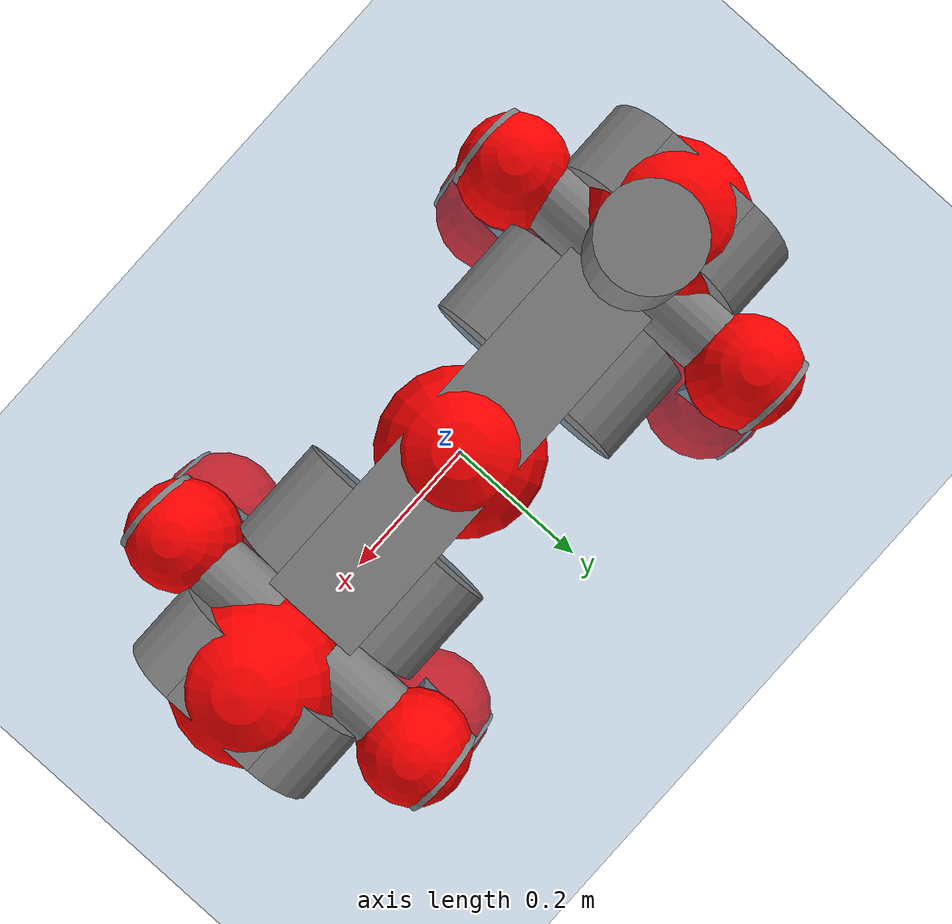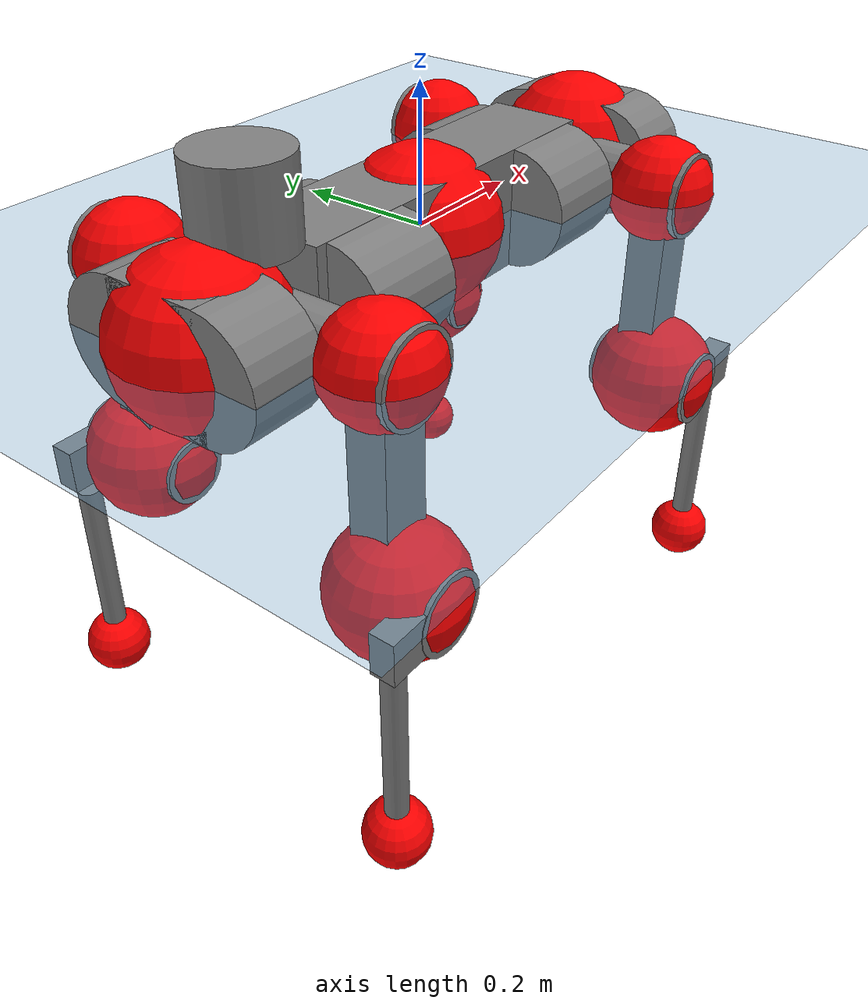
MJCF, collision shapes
<mujoco model="anymal_c">
  <compiler angle="radian" assetdir="assets" balanceinertia="true" inertiafromgeom="false"/>

  <option timestep="0.005" density="1.2" viscosity="2e-05"/>

  <size nkey="1"/>

  <visual>
    <quality shadowsize="8192"/>
    <map shadowclip="0.5"/>
  </visual>

  <default>
    <default class="/">
      <material specular="0" shininess="0.25"/>
      <geom contype="0" conaffinity="0" group="1" solref="-1000 -80"/>
      <site size="0.01 0.005 0.005" group="5"/>
      <general forcelimited="true" forcerange="-80 80" biastype="affine" gainprm="80" biasprm="0 -80 -2"/>
      <default class="anymal_c">
        <joint armature="0.01" damping="0.01" frictionloss="0.1"/>
        <default class="visual">
          <geom type="mesh" group="2"/>
          <default class="visual_zflip"/>
        </default>
        <default class="collision">
          <geom type="cylinder" group="3"/>
          <default class="foot">
            <geom size="0.03 0 0" type="sphere" condim="6" priority="1" friction="0.8 0.02 0.01" solimp="0.015 1 0.03"/>
          </default>
        </default>
      </default>
      <default class="reward_collision_sphere">
        <geom group="5" rgba="1 0 0 1"/>
      </default>
    </default>
  </default>

  <asset>
    <texture type="skybox" colorspace="auto" name="//unnamed_texture_0" builtin="gradient" rgb1="0.95 0.95 0.95" rgb2="0.95 0.95 0.95" width="100" height="600"/>
    <texture type="2d" colorspace="auto" name="texplane" builtin="checker" rgb1="0.345 0.575 0.748" rgb2="0.345 0.575 0.748" markrgb="1 1 1" width="512" height="512"/>
    <texture type="2d" colorspace="linear" name="base" file="base.png"/>
    <texture type="2d" colorspace="linear" name="top_shell" file="top_shell.png"/>
    <texture type="2d" colorspace="linear" name="bottom_shell" file="bottom_shell.png"/>
    <texture type="2d" colorspace="linear" name="remote" file="remote.png"/>
    <texture type="2d" colorspace="linear" name="hatch" file="hatch.png"/>
    <texture type="2d" colorspace="linear" name="handle" file="handle.png"/>
    <texture type="2d" colorspace="linear" name="face" file="face.png"/>
    <texture type="2d" colorspace="linear" name="battery" file="battery.png"/>
    <texture type="2d" colorspace="linear" name="lidar_cage" file="lidar_cage.png"/>
    <texture type="2d" colorspace="linear" name="depth_camera" file="depth_camera.png"/>
    <texture type="2d" colorspace="linear" name="wide_angle_camera" file="wide_angle_camera.png"/>
    <texture type="2d" colorspace="linear" name="lidar" file="lidar.png"/>
    <texture type="2d" colorspace="linear" name="drive" file="drive.png"/>
    <texture type="2d" colorspace="linear" name="hip_l" file="hip_l.png"/>
    <texture type="2d" colorspace="linear" name="shank_l" file="shank_l.png"/>
    <texture type="2d" colorspace="linear" name="foot" file="foot.png"/>
    <texture type="2d" colorspace="linear" name="thigh" file="thigh.png"/>
    <texture type="2d" colorspace="linear" name="shank_r" file="shank_r.png"/>
    <texture type="2d" colorspace="linear" name="hip_r" file="hip_r.png"/>
    <material name="MatPlane" class="/" texture="texplane" texuniform="true" texrepeat="2 2" specular="0.9" shininess="0.5"/>
    <material name="black_plastic" class="/" rgba="0.007 0.007 0.007 1"/>
    <material name="green" class="/" rgba="0.052 0.178 0.033 1"/>
    <material name="red" class="/" rgba="0.178 0.006 0.005 1"/>
    <material name="yellow" class="/" rgba="0.178 0.119 0.006 1"/>
    <material name="lwl" class="/" rgba="0.8 0.8 0.8 1"/>
    <material name="base" class="/" texture="base"/>
    <material name="top_shell" class="/" texture="top_shell"/>
    <material name="bottom_shell" class="/" texture="bottom_shell"/>
    <material name="hip_l" class="/" texture="hip_l"/>
    <material name="thigh" class="/" texture="thigh"/>
    <material name="shank_l" class="/" texture="shank_l"/>
    <material name="foot" class="/" texture="foot"/>
    <material name="hip_r" class="/" texture="hip_r"/>
    <material name="shank" class="/" texture="shank_r"/>
    <material name="hatch" class="/" texture="hatch"/>
    <material name="remote" class="/" texture="remote"/>
    <material name="handle" class="/" texture="handle"/>
    <material name="face" class="/" texture="face"/>
    <material name="depth_camera" class="/" texture="depth_camera"/>
    <material name="wide_angle_camera" class="/" texture="wide_angle_camera"/>
    <material name="battery" class="/" texture="battery"/>
    <material name="lidar_cage" class="/" texture="lidar_cage"/>
    <material name="lidar" class="/" texture="lidar"/>
    <material name="drive" class="/" texture="drive"/>
    <mesh name="base_0" class="/" file="base_0.obj"/>
    <mesh name="base_1" class="/" file="base_1.obj"/>
    <mesh name="base_2" class="/" file="base_2.obj"/>
    <mesh name="base_3" class="/" file="base_3.obj"/>
    <mesh name="base_4" class="/" file="base_4.obj"/>
    <mesh name="base_5" class="/" file="base_5.obj"/>
    <mesh name="top_shell" class="/" file="top_shell.obj"/>
    <mesh name="bottom_shell" class="/" file="bottom_shell.obj"/>
    <mesh name="remote" class="/" file="remote.obj"/>
    <mesh name="handle" class="/" file="handle.obj"/>
    <mesh name="face" class="/" file="face.obj"/>
    <mesh name="wide_angle_camera" class="/" file="wide_angle_camera.obj"/>
    <mesh name="depth_camera" class="/" file="depth_camera.obj"/>
    <mesh name="battery" class="/" file="battery.obj"/>
    <mesh name="lidar_cage" class="/" file="lidar_cage.obj"/>
    <mesh name="lidar" class="/" file="lidar.obj"/>
    <mesh name="drive" class="/" file="drive.obj"/>
    <mesh name="hip_l" class="/" file="hip_l.obj"/>
    <mesh name="thigh" class="/" file="thigh.obj"/>
    <mesh name="shank_l" class="/" file="shank_l.obj"/>
    <mesh name="foot" class="/" file="foot.obj"/>
    <mesh name="hip_r" class="/" file="hip_r.obj"/>
    <mesh name="hatch" class="/" file="hatch.obj"/>
    <mesh name="shank_r" class="/" file="shank_r.obj"/>
  </asset>

  <worldbody>
    <geom name="floor" class="/" size="100 100 0.125" type="plane" group="0" material="MatPlane"/>
    <light name="toplight_shadow" class="/" pos="0 0 5" dir="0.0990148 0.0990148 -0.990148" type="directional" ambient="0.04 0.04 0.04" diffuse="0.55 0.55 0.55" specular="0.12 0.12 0.12"/>
    <light name="toplight_fill" class="/" pos="0 0 5" dir="0.0990148 0.0990148 -0.990148" type="directional" castshadow="false" ambient="0.04 0.04 0.04" diffuse="0.3 0.3 0.3" specular="0.08 0.08 0.08"/>
    <body name="trunk" childclass="anymal_c" pos="-0.000609431 -0.000299692 -0.000436161" quat="1 -0.000519466 0.000335157 0.000461794">
      <inertial pos="0.0119908 0.00671503 0.0560056" quat="0.502792 0.502193 0.497618 0.497371" mass="15.9881" diaginertia="0.372651 0.431554 0.344036"/>
      <joint name="//unnamed_joint_0" type="free" armature="0" damping="0" frictionloss="0"/>
      <geom name="//unnamed_geom_1" class="visual" material="green" mesh="base_0"/>
      <geom name="//unnamed_geom_2" class="visual" material="yellow" mesh="base_1"/>
      <geom name="//unnamed_geom_3" class="visual" material="red" mesh="base_2"/>
      <geom name="//unnamed_geom_4" class="visual" material="black_plastic" mesh="base_3"/>
      <geom name="//unnamed_geom_5" class="visual" material="lwl" mesh="base_4"/>
      <geom name="//unnamed_geom_6" class="visual" material="base" mesh="base_5"/>
      <geom name="trunk_1" class="collision" size="0.281691 0.0679943 0.0874213" type="box"/>
      <geom name="trunk_2" class="collision" size="0.0874213 0.0704227" pos="0.194662 0.0650736 0" quat="0.707107 0 0.707107 0"/>
      <geom name="trunk_3" class="collision" size="0.0874213 0.0704227" pos="-0.194662 0.0650736 0" quat="0.707107 0 0.707107 0"/>
      <geom name="trunk_4" class="collision" size="0.0874213 0.0704227" pos="0.194662 -0.0650736 0" quat="0.707107 0 0.707107 0"/>
      <geom name="trunk_5" class="collision" size="0.0874213 0.0704227" pos="-0.194662 -0.0650736 0" quat="0.707107 0 0.707107 0"/>
      <geom name="//unnamed_geom_12" class="visual" material="top_shell" mesh="top_shell"/>
      <geom name="//unnamed_geom_13" class="visual" material="bottom_shell" mesh="bottom_shell"/>
      <geom name="//unnamed_geom_14" class="visual" material="remote" mesh="remote"/>
      <geom name="//unnamed_geom_15" class="visual" material="handle" mesh="handle"/>
      <geom name="//unnamed_geom_16" class="visual" pos="0.370976 0 0" quat="1 0 0 0" material="face" mesh="face"/>
      <geom name="trunk_6" class="collision" size="0.0534241 0.0679943 0.0874213" pos="0.4202 0 0" type="box"/>
      <geom name="//unnamed_geom_18" class="collision" size="0.0874213 0.0534241" pos="0.4202 0.0650736 0" quat="0.707107 0 0.707107 0"/>
      <geom name="//unnamed_geom_19" class="collision" size="0.0874213 0.0534241" pos="0.4202 -0.0650736 0" quat="0.707107 0 0.707107 0"/>
      <geom name="//unnamed_geom_20" class="visual" pos="0.413183 0 -0.0332889" quat="0.965926 0 0.258819 0" material="depth_camera" mesh="depth_camera"/>
      <geom name="//unnamed_geom_21" class="visual" pos="0.459133 0 0.0163087" material="wide_angle_camera" mesh="wide_angle_camera"/>
      <geom name="//unnamed_geom_22" class="visual_zflip" pos="-0.370976 0 0" quat="0 0 0 1" material="face" mesh="face"/>
      <geom name="trunk_7" class="collision" size="0.0534241 0.0679943 0.0874213" pos="-0.4202 0 0" quat="0 0 0 1" type="box"/>
      <geom name="//unnamed_geom_24" class="collision" size="0.0874213 0.0534241" pos="-0.4202 -0.0650736 0" quat="0 -0.707107 0 0.707107"/>
      <geom name="//unnamed_geom_25" class="collision" size="0.0874213 0.0534241" pos="-0.4202 0.0650736 0" quat="0 -0.707107 0 0.707107"/>
      <geom name="//unnamed_geom_26" class="visual" pos="-0.413183 0 -0.0332889" quat="0 -0.258819 0 0.965926" material="depth_camera" mesh="depth_camera"/>
      <geom name="//unnamed_geom_27" class="visual_zflip" pos="-0.459133 0 0.0163087" quat="0 0 0 1" material="wide_angle_camera" mesh="wide_angle_camera"/>
      <geom name="//unnamed_geom_28" class="visual" material="battery" mesh="battery"/>
      <geom name="//unnamed_geom_29" class="visual" pos="0 0.0715414 0.0301701" quat="0.683013 -0.183013 0.183013 0.683013" material="depth_camera" mesh="depth_camera"/>
      <geom name="//unnamed_geom_30" class="visual" pos="0 -0.0715414 0.0301701" quat="0.683013 0.183013 0.183013 -0.683013" material="depth_camera" mesh="depth_camera"/>
      <geom name="//unnamed_geom_31" class="visual" pos="-0.325778 0 0.0800727" quat="1 0 0 0" material="lidar_cage" mesh="lidar_cage"/>
      <geom name="trunk_8" class="collision" size="0.0679943 0.0582809" pos="-0.325778 0 0.145438"/>
      <geom name="//unnamed_geom_33" class="visual" pos="-0.325778 1.36042e-05 0.154916" quat="0.707107 0 0 -0.707107" material="lidar" mesh="lidar"/>
      <geom name="//unnamed_geom_34" class="visual" pos="0.268409 0.0967376 -2.7566e-09" quat="0.258819 0.965926 0 0" material="drive" mesh="drive"/>
      <geom name="//unnamed_geom_35" class="visual" pos="0.268409 -0.0967376 2.7566e-09" quat="0.258819 -0.965926 0 0" material="drive" mesh="drive"/>
      <geom name="//unnamed_geom_36" class="visual" pos="-0.268409 0.0967376 2.7566e-09" quat="0 0 0.965926 -0.258819" material="drive" mesh="drive"/>
      <geom name="//unnamed_geom_37" class="visual" pos="-0.268409 -0.0967376 -2.7566e-09" quat="0 0 -0.965926 -0.258819" material="drive" mesh="drive"/>
      <geom name="//unnamed_geom_38" class="visual" pos="0.103819 0 0.079528" quat="1 0 0 0" material="hatch" mesh="hatch"/>
      <geom name="//unnamed_geom_39" class="reward_collision_sphere" size="0.116562"/>
      <geom name="//unnamed_geom_40" class="reward_collision_sphere" size="0.116562" pos="0.402748 0 0"/>
      <geom name="//unnamed_geom_41" class="reward_collision_sphere" size="0.116562" pos="-0.402748 0 0"/>
      <site name="imu" pos="0.183465 0.00926693 0.0893553" size="0.00971348"/>
      <camera name="track" pos="0 -1.85925 0" quat="0.707107 0.707107 0 0" mode="trackcom"/>
      <camera name="ego_camera" pos="0.402748 0 -0.043577" quat="-0.5 -0.5 0.5 0.5"/>
      <body name="LF_HIP" pos="0.273678 0.102347 0.00196865" quat="0.259506 0.965741 -0.000151451 0.000733419">
        <inertial pos="0.051364 -0.00906227 -0.0109941" quat="-0.129809 0.707872 -0.134734 0.681112" mass="2.77804" diaginertia="0.00382694 0.00411092 0.00562936"/>
        <joint name="LF_HAA" pos="0 0 0" axis="0.999901 0.0139708 0.00186348" stiffness="0.0192875" range="-0.708454 0.465039" armature="0.0106173" damping="0" frictionloss="0.116595"/>
        <geom name="//unnamed_geom_42" class="visual" pos="0 -0.000162158 2.66344e-05" quat="0.258819 -0.965926 0 0" material="hip_l" mesh="hip_l"/>
        <geom name="//unnamed_geom_43" class="visual" pos="0.0536102 -0.0654729 -0.0389828" quat="0.183013 -0.683013 0.683013 0.183013" material="drive" mesh="drive"/>
        <geom name="//unnamed_geom_44" class="collision" size="0.0485674 0.0679943" pos="0.0536102 -0.0111181 -0.00752248" quat="-0.353553 -0.612372 0.612372 -0.353553"/>
        <body name="LF_THIGH" pos="0.0564202 -0.0759974 -0.0474575" quat="0.184882 -0.681529 0.683266 0.185699">
          <inertial pos="0.0298488 -2.30657e-05 -0.270268" quat="0.993785 0.0171791 -0.0849626 0.0698414" mass="2.89357" diaginertia="0.0170605 0.0225184 0.00626435"/>
          <joint name="LF_HFE" pos="0 0 0" axis="0.999999 0.000653106 -0.000972292" stiffness="0.00931046" range="-3.27658 3.06184" armature="0.00948669" damping="0" frictionloss="0.111001"/>
          <geom name="//unnamed_geom_45" class="visual" pos="-0.000688951 -1.08562e-06 0" quat="0.707107 0 0 -0.707107" material="thigh" mesh="thigh"/>
          <geom name="//unnamed_geom_46" class="collision" size="0.0631376 0.0388539" pos="0.0357998 0 0" quat="0.5 0.5 -0.5 -0.5"/>
          <geom name="//unnamed_geom_47" class="collision" size="0.0364255 0.0291404 0.137265" pos="0.0268499 0 -0.153951" quat="0.707107 0 0 -0.707107" type="box"/>
          <geom name="//unnamed_geom_48" class="visual" pos="0.0897681 0 -0.310486" quat="1 0 0 0" material="drive" mesh="drive"/>
          <geom name="//unnamed_geom_49" class="collision" size="0.0485674 0.0679943" pos="0.0271184 0 -0.310486" quat="0.707107 0 0.707107 0"/>
          <geom name="//unnamed_geom_50" class="reward_collision_sphere" size="0.0777078" pos="0.0223749 0 0"/>
          <body name="LF_SHANK" pos="0.0897446 -0.00715671 -0.314036" quat="1 0.000113828 -0.000321386 0.000352863">
            <inertial pos="0.00440203 -0.0557077 -0.0860018" quat="0.992851 -0.117616 -0.00428206 -0.0198861" mass="0.532428" diaginertia="0.00616816 0.00645365 0.00171007"/>
            <joint name="LF_KFE" pos="0 0 0" axis="0.999911 0.0128796 0.00335252" stiffness="0.0324729" range="-3.21675 3.15718" armature="0.00959004" damping="0.0212879" frictionloss="0.102701"/>
            <geom name="//unnamed_geom_51" class="visual" pos="-0.000224652 -0.00119785 0" quat="0.707107 0 0 -0.707107" material="shank_l" mesh="shank_l"/>
            <geom name="LF_kfe_act" class="collision" size="0.0582809 0.019427" pos="0.0178999 0 0" quat="0.5 0.5 -0.5 -0.5"/>
            <geom name="//unnamed_geom_53" class="collision" size="0.0558515 0.032783 0.0184556" pos="0.0178999 -0.0534524 0" quat="0.5 0.5 -0.5 -0.5" type="box"/>
            <geom name="//unnamed_geom_54" class="visual" pos="0.0116797 -0.0821464 -0.368193" quat="0.382683 0 0 -0.92388" material="foot" mesh="foot"/>
            <geom name="LF_calf" class="collision" size="0.0169986 0.137205" pos="0.0116797 -0.0817603 -0.184096" quat="0.707107 0 0 -0.707107"/>
            <geom name="LF_foot" class="foot" size="0.0319806" pos="0.0116797 -0.0817603 -0.343681" quat="0.707107 0 0 -0.707107"/>
            <geom name="//unnamed_geom_57" class="reward_collision_sphere" size="0.0971348" pos="-0.0447498 0 0"/>
            <geom name="//unnamed_geom_58" class="reward_collision_sphere" size="0.0485674" pos="0.0116797 -0.0817603 -0.343681"/>
            <site name="LF_foot" class="foot" pos="0.0116797 -0.0817603 -0.343681" quat="0.707107 0 0 -0.707107" size="0.00971348"/>
          </body>
        </body>
      </body>
      <body name="RF_HIP" pos="0.276593 -0.0960263 -0.00119558" quat="0.258817 -0.965926 -0.000165398 0.000258608">
        <inertial pos="0.0543728 0.0242285 -0.00517591" quat="0.127352 0.708862 0.106704 0.6855" mass="2.53184" diaginertia="0.00367156 0.00314852 0.00547407"/>
        <joint name="RF_HAA" pos="0 0 0" axis="0.999592 -0.0282672 -0.0041685" stiffness="0.000186684" range="-0.460681 0.729054" armature="0.00948451" damping="0.0312599" frictionloss="0.0938303"/>
        <geom name="//unnamed_geom_59" class="visual" pos="0 0.000162157 2.66343e-05" quat="0.258819 0.965926 0 0" material="hip_r" mesh="hip_r"/>
        <geom name="//unnamed_geom_60" class="visual" pos="0.0536102 0.0654729 -0.0389828" quat="0.183013 0.683013 0.683013 -0.183013" material="drive" mesh="drive"/>
        <geom name="//unnamed_geom_61" class="collision" size="0.0485674 0.0679943" pos="0.0536102 0.0111181 -0.00752248" quat="-0.353553 0.612372 0.612372 0.353553"/>
        <body name="RF_THIGH" pos="0.0511423 0.0697683 -0.0393289" quat="0.182454 0.680845 0.685197 -0.18348">
          <inertial pos="0.0196539 -8.58761e-05 -0.264809" quat="0.990866 -0.00428978 -0.0875654 0.102464" mass="2.57715" diaginertia="0.0178425 0.0219683 0.00568876"/>
          <joint name="RF_HFE" pos="0 0 0" axis="0.999958 -0.00918553 8.39022e-06" stiffness="0.0170678" range="-3.14946 3.11566" armature="0.0113651" damping="0.00984471" frictionloss="0.091163"/>
          <geom name="//unnamed_geom_62" class="visual" pos="-0.000688951 -1.08562e-06 0" quat="0.707107 0 0 -0.707107" material="thigh" mesh="thigh"/>
          <geom name="//unnamed_geom_63" class="collision" size="0.0631376 0.0388539" pos="0.0357998 0 0" quat="0.5 0.5 0.5 0.5"/>
          <geom name="//unnamed_geom_64" class="collision" size="0.0364255 0.0291404 0.137265" pos="0.0268499 0 -0.153951" quat="0.707107 0 0 0.707107" type="box"/>
          <geom name="//unnamed_geom_65" class="visual" pos="0.0897681 0 -0.310486" quat="1 0 0 0" material="drive" mesh="drive"/>
          <geom name="//unnamed_geom_66" class="collision" size="0.0485674 0.0679943" pos="0.0271184 0 -0.310486" quat="0.707107 0 0.707107 0"/>
          <geom name="//unnamed_geom_67" class="reward_collision_sphere" size="0.0777078" pos="0.0223749 0 0"/>
          <body name="RF_SHANK" pos="0.092719 0.000575186 -0.309415" quat="0.999999 0.000345034 0.00127371 0.000575582">
            <inertial pos="0.0101671 0.0570859 -0.0878326" quat="0.987008 0.154076 -0.0091816 0.0446244" mass="0.483295" diaginertia="0.00536014 0.00609945 0.00160578"/>
            <joint name="RF_KFE" pos="0 0 0" axis="1 9.16605e-06 1.36737e-05" stiffness="0.0386103" range="-2.97744 3.20404" armature="0.00668941" damping="0" frictionloss="0.0894268"/>
            <geom name="//unnamed_geom_68" class="visual" pos="-0.000224651 0.00119785 0" quat="0.707107 0 0 0.707107" material="shank" mesh="shank_r"/>
            <geom name="RF_kfe_act" class="collision" size="0.0582809 0.019427" pos="0.0178999 0 0" quat="0.5 0.5 0.5 0.5"/>
            <geom name="//unnamed_geom_70" class="collision" size="0.0558515 0.032783 0.0184556" pos="0.0178999 0.0534524 0" quat="0.5 0.5 0.5 0.5" type="box"/>
            <geom name="//unnamed_geom_71" class="visual" pos="0.0116796 0.0821464 -0.368193" quat="0.382683 0 0 0.92388" material="foot" mesh="foot"/>
            <geom name="RF_calf" class="collision" size="0.0169986 0.137205" pos="0.0116797 0.0817603 -0.184096" quat="0.707107 0 0 0.707107"/>
            <geom name="RF_foot" class="foot" size="0.0346829" pos="0.0116797 0.0817603 -0.343681" quat="0.707107 0 0 0.707107"/>
            <geom name="//unnamed_geom_74" class="reward_collision_sphere" size="0.0971348" pos="-0.0447498 0 0"/>
            <geom name="//unnamed_geom_75" class="reward_collision_sphere" size="0.0485674" pos="0.0116797 0.0817603 -0.343681"/>
            <site name="RF_foot" class="foot" pos="0.0116797 0.0817603 -0.343681" quat="0.707107 0 0 0.707107" size="0.00971348"/>
          </body>
        </body>
      </body>
      <body name="LH_HIP" pos="-0.27536 0.101196 0.00651986" quat="0.000323979 0.000159758 0.966075 -0.258262">
        <inertial pos="0.0513454 0.00996125 -0.000489836" quat="0.111131 0.684765 0.140989 0.706306" mass="2.29874" diaginertia="0.00264023 0.00302572 0.0046748"/>
        <joint name="LH_HAA" pos="0 0 0" axis="0.999598 -0.00203863 0.0282933" stiffness="0.00582101" range="-0.520828 0.711171" armature="0.00842439" damping="0.0426339" frictionloss="0.0992264"/>
        <geom name="//unnamed_geom_76" class="visual" pos="0 0.000162157 2.66343e-05" quat="-0.258819 -0.965926 0 0" material="hip_r" mesh="hip_r"/>
        <geom name="//unnamed_geom_77" class="visual" pos="0.0536102 0.0654729 -0.0389828" quat="0.183013 0.683013 0.683013 -0.183013" material="drive" mesh="drive"/>
        <geom name="//unnamed_geom_78" class="collision" size="0.0485674 0.0679943" pos="0.0536102 0.0111181 -0.00752248" quat="-0.353553 0.612372 0.612372 0.353553"/>
        <body name="LH_THIGH" pos="0.0517537 0.0690648 -0.0472814" quat="0.182848 0.683088 0.682892 -0.183349">
          <inertial pos="0.0373171 -0.00031374 -0.25909" quat="0.992691 -0.000758738 -0.0817824 0.0887501" mass="3.01076" diaginertia="0.0204447 0.0206992 0.00671807"/>
          <joint name="LH_HFE" pos="0 0 0" axis="0.999973 0.00602027 0.00429562" range="-3.09569 3.218" armature="0.0103141" damping="0.0307892" frictionloss="0.0999284"/>
          <geom name="//unnamed_geom_79" class="visual" pos="-0.000688951 -1.08562e-06 0" quat="0.707107 0 0 -0.707107" material="thigh" mesh="thigh"/>
          <geom name="//unnamed_geom_80" class="collision" size="0.0631376 0.0388539" pos="0.0357998 0 0" quat="0.5 0.5 -0.5 -0.5"/>
          <geom name="//unnamed_geom_81" class="collision" size="0.0364255 0.0291404 0.137265" pos="0.0268499 0 -0.153951" quat="0.707107 0 0 -0.707107" type="box"/>
          <geom name="//unnamed_geom_82" class="visual" pos="0.0897681 0 -0.310486" quat="1 0 0 0" material="drive" mesh="drive"/>
          <geom name="//unnamed_geom_83" class="collision" size="0.0485674 0.0679943" pos="0.0271184 0 -0.310486" quat="0.707107 0 0.707107 0"/>
          <geom name="//unnamed_geom_84" class="reward_collision_sphere" size="0.0777078" pos="0.0223749 0 0"/>
          <body name="LH_SHANK" pos="0.091054 -0.000851757 -0.310585" quat="1 -6.47374e-06 9.13007e-05 -6.01075e-06">
            <inertial pos="0.00264718 0.0500056 -0.0876743" quat="0.992991 0.116546 0.012997 0.0147577" mass="0.476314" diaginertia="0.00537641 0.00515263 0.00150597"/>
            <joint name="LH_KFE" pos="0 0 0" axis="0.999931 -0.0021994 0.0115405" range="-3.27154 3.22559" armature="0.00596576" damping="0" frictionloss="0.126587"/>
            <geom name="//unnamed_geom_85" class="visual" pos="-0.000224651 0.00119785 0" quat="-0.707107 0 0 -0.707107" material="shank" mesh="shank_r"/>
            <geom name="LH_kfe_act" class="collision" size="0.0582809 0.019427" pos="0.0178999 0 0" quat="0.5 0.5 -0.5 -0.5"/>
            <geom name="//unnamed_geom_87" class="collision" size="0.0558515 0.032783 0.0184556" pos="0.0178999 0.0534524 0" quat="0.5 0.5 -0.5 -0.5" type="box"/>
            <geom name="//unnamed_geom_88" class="visual" pos="0.0116796 0.0821464 -0.368193" quat="-0.382683 0 0 -0.92388" material="foot" mesh="foot"/>
            <geom name="LH_calf" class="collision" size="0.0169986 0.137205" pos="0.0116797 0.0817603 -0.184096" quat="0.707107 0 0 -0.707107"/>
            <geom name="LH_foot" class="foot" size="0.0284504" pos="0.0116797 0.0817603 -0.343681" quat="0.707107 0 0 -0.707107"/>
            <geom name="//unnamed_geom_91" class="reward_collision_sphere" size="0.0971348" pos="-0.0447498 0 0"/>
            <geom name="//unnamed_geom_92" class="reward_collision_sphere" size="0.0485674" pos="0.0116797 0.0817603 -0.343681"/>
            <site name="LH_foot" class="foot" pos="0.0116797 0.0817603 -0.343681" quat="0.707107 0 0 -0.707107" size="0.00971348"/>
          </body>
        </body>
      </body>
      <body name="RH_HIP" pos="-0.278179 -0.0948815 -0.00105881" quat="-0.000382206 -0.000599055 -0.965913 -0.258864">
        <inertial pos="0.0538706 -0.0167898 -0.000612007" quat="-0.0811943 0.70148 -0.131248 0.695779" mass="2.63222" diaginertia="0.0037391 0.00387013 0.00568611"/>
        <joint name="RH_HAA" pos="0 0 0" axis="0.999278 0.0363703 0.0109509" stiffness="0.00518582" range="-0.577483 0.441187" armature="0.0102203" damping="0.0209754" frictionloss="0.099341"/>
        <geom name="//unnamed_geom_93" class="visual" pos="0 -0.000162158 2.66344e-05" quat="-0.258819 0.965926 0 0" material="hip_l" mesh="hip_l"/>
        <geom name="//unnamed_geom_94" class="visual" pos="0.0536102 -0.0654729 -0.0389828" quat="-0.183013 0.683013 -0.683013 -0.183013" material="drive" mesh="drive"/>
        <geom name="//unnamed_geom_95" class="collision" size="0.0485674 0.0679943" pos="0.0536102 -0.0111181 -0.00752248" quat="0.353553 0.612372 -0.612372 0.353553"/>
        <body name="RH_THIGH" pos="0.0449364 -0.068083 -0.0386151" quat="-0.185366 0.684001 -0.68169 -0.18188">
          <inertial pos="0.0297974 -0.0030439 -0.266798" quat="0.993269 -0.00419466 -0.0810344 0.082662" mass="3.1248" diaginertia="0.019308 0.021125 0.00655151"/>
          <joint name="RH_HFE" pos="0 0 0" axis="0.999958 -0.00141313 0.00904578" range="-3.20365 3.14126" armature="0.00899117" damping="0" frictionloss="0.0959698"/>
          <geom name="//unnamed_geom_96" class="visual" pos="-0.000688951 -1.08562e-06 0" quat="0.707107 0 0 -0.707107" material="thigh" mesh="thigh"/>
          <geom name="//unnamed_geom_97" class="collision" size="0.0631376 0.0388539" pos="0.0357998 0 0" quat="0.5 0.5 0.5 0.5"/>
          <geom name="//unnamed_geom_98" class="collision" size="0.0364255 0.0291404 0.137265" pos="0.0268499 0 -0.153951" quat="0.707107 0 0 0.707107" type="box"/>
          <geom name="//unnamed_geom_99" class="visual" pos="0.0897681 0 -0.310486" quat="1 0 0 0" material="drive" mesh="drive"/>
          <geom name="//unnamed_geom_100" class="collision" size="0.0485674 0.0679943" pos="0.0271184 0 -0.310486" quat="0.707107 0 0.707107 0"/>
          <geom name="//unnamed_geom_101" class="reward_collision_sphere" size="0.0777078" pos="0.0223749 0 0"/>
          <body name="RH_SHANK" pos="0.0904418 -0.00571611 -0.308336" quat="0.999992 0.000150872 -0.00167857 0.00353025">
            <inertial pos="-0.00095595 -0.0554062 -0.0874873" quat="0.992896 -0.108379 0.00990643 -0.0480973" mass="0.519521" diaginertia="0.00587163 0.00639812 0.0017531"/>
            <joint name="RH_KFE" pos="0 0 0" axis="0.999935 0.00673833 -0.00923657" stiffness="0.00270874" range="-3.11933 2.99268" armature="0.00948978" damping="0" frictionloss="0.089777"/>
            <geom name="//unnamed_geom_102" class="visual" pos="-0.000224652 -0.00119785 0" quat="0.707107 0 0 -0.707107" material="shank_l" mesh="shank_l"/>
            <geom name="RH_kfe_act" class="collision" size="0.0582809 0.019427" pos="0.0178999 0 0" quat="0.5 0.5 0.5 0.5"/>
            <geom name="//unnamed_geom_104" class="collision" size="0.0558515 0.032783 0.0184556" pos="0.0178999 -0.0534524 0" quat="0.5 0.5 0.5 0.5" type="box"/>
            <geom name="//unnamed_geom_105" class="visual" pos="0.0116797 -0.0821464 -0.368193" quat="0.382683 0 0 -0.92388" material="foot" mesh="foot"/>
            <geom name="RH_calf" class="collision" size="0.0169986 0.137205" pos="0.0116797 -0.0817603 -0.184096" quat="0.707107 0 0 0.707107"/>
            <geom name="RH_foot" class="foot" size="0.033377" pos="0.0116797 -0.0817603 -0.343681" quat="0.707107 0 0 0.707107"/>
            <geom name="//unnamed_geom_108" class="reward_collision_sphere" size="0.0971348" pos="-0.0447498 0 0"/>
            <geom name="//unnamed_geom_109" class="reward_collision_sphere" size="0.0485674" pos="0.0116797 -0.0817603 -0.343681"/>
            <site name="RH_foot" class="foot" pos="0.0116797 -0.0817603 -0.343681" quat="0.707107 0 0 0.707107" size="0.00971348"/>
          </body>
        </body>
      </body>
    </body>
  </worldbody>

  <contact>
    <pair class="/" geom1="floor" geom2="LF_foot" name="//unnamed_contact_0"/>
    <pair class="/" geom1="floor" geom2="RF_foot" name="//unnamed_contact_1"/>
    <pair class="/" geom1="floor" geom2="LH_foot" name="//unnamed_contact_2"/>
    <pair class="/" geom1="floor" geom2="RH_foot" name="//unnamed_contact_3"/>
  </contact>

  <actuator>
    <general name="LF_HAA" class="/" joint="LF_HAA" forcerange="-93.4166 93.4166" gainprm="83.1478" biasprm="0 -83.1478 -2.0525"/>
    <general name="LF_HFE" class="/" joint="LF_HFE" forcerange="-102.143 102.143" gainprm="83.1478" biasprm="0 -83.1478 -2.0525"/>
    <general name="LF_KFE" class="/" joint="LF_KFE" forcerange="-78.7374 78.7374" gainprm="83.1478" biasprm="0 -83.1478 -2.0525"/>
    <general name="RF_HAA" class="/" joint="RF_HAA" forcerange="-84.9046 84.9046" gainprm="83.1478" biasprm="0 -83.1478 -2.0525"/>
    <general name="RF_HFE" class="/" joint="RF_HFE" forcerange="-64.8106 64.8106" gainprm="83.1478" biasprm="0 -83.1478 -2.0525"/>
    <general name="RF_KFE" class="/" joint="RF_KFE" forcerange="-74.1816 74.1816" gainprm="83.1478" biasprm="0 -83.1478 -2.0525"/>
    <general name="LH_HAA" class="/" joint="LH_HAA" forcerange="-79.5628 79.5628" gainprm="83.1478" biasprm="0 -83.1478 -2.0525"/>
    <general name="LH_HFE" class="/" joint="LH_HFE" forcerange="-91.8855 91.8855" gainprm="83.1478" biasprm="0 -83.1478 -2.0525"/>
    <general name="LH_KFE" class="/" joint="LH_KFE" forcerange="-76.3565 76.3565" gainprm="83.1478" biasprm="0 -83.1478 -2.0525"/>
    <general name="RH_HAA" class="/" joint="RH_HAA" forcerange="-73.622 73.622" gainprm="83.1478" biasprm="0 -83.1478 -2.0525"/>
    <general name="RH_HFE" class="/" joint="RH_HFE" forcerange="-58.5384 58.5384" gainprm="83.1478" biasprm="0 -83.1478 -2.0525"/>
    <general name="RH_KFE" class="/" joint="RH_KFE" forcerange="-81.0614 81.0614" gainprm="83.1478" biasprm="0 -83.1478 -2.0525"/>
  </actuator>

  <sensor>
    <gyro site="imu" name="imu_angular_velocity"/>
    <velocimeter site="imu" name="imu_linear_velocity"/>
    <framelinvel objtype="site" objname="LF_foot" name="LF_foot_global_linear_velocity"/>
    <framelinvel objtype="site" objname="RF_foot" name="RF_foot_global_linear_velocity"/>
    <framelinvel objtype="site" objname="LH_foot" name="LH_foot_global_linear_velocity"/>
    <framelinvel objtype="site" objname="RH_foot" name="RH_foot_global_linear_velocity"/>
  </sensor>

  <keyframe>
    <key name="home" qpos="0 0 0.55 1 0 0 0 0 0.4 -0.8 0 -0.4 0.8 0 -0.4 0.8 0 0.4 -0.8"/>
  </keyframe>
</mujoco>
